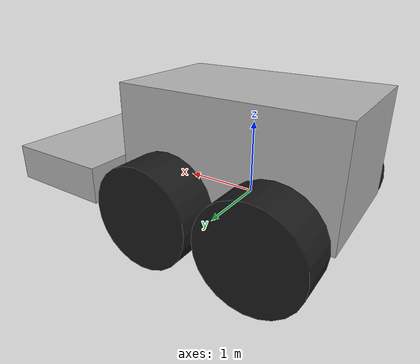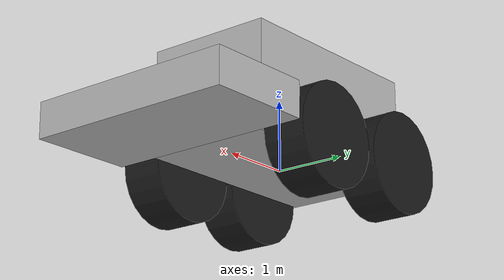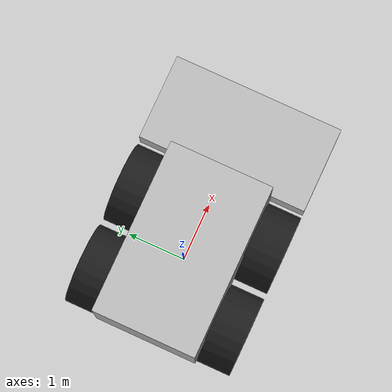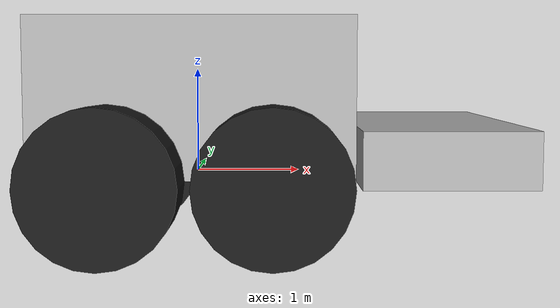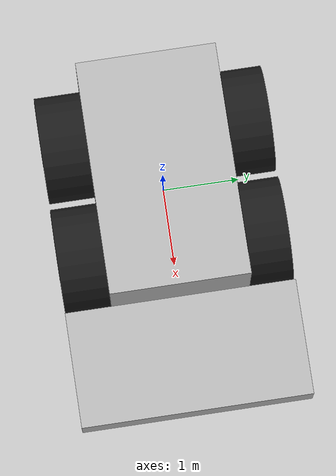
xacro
<?xml version="1.0"?>
<robot name="GroundsBot" xmlns:xacro="http://www.ros.org/wiki/xacro">

  <!-- Xacro properties -->
  <xacro:property name="width" value="3.0"/>
  <xacro:property name="height" value="1.5"/>
  <xacro:property name="length" value="4.5"/>
  <xacro:property name="wheel_radius" value="0.7"/>
  <xacro:property name="wheel_width" value="0.6"/>

  <!-- Colors -->
  <material name="grey">
    <color rgba="0.7 0.7 0.7 1.0"/>
  </material>
  <material name="black">
    <color rgba="0.1 0.1 0.1 1.0"/>
  </material>
  <material name="red">
    <color rgba="0.8 0.1 0.1 1.0"/>
  </material>

  <!-- Include other xacro files -->
  <xacro:include filename="$(find description_package)/urdf/grounds_bot_gazebo.xacro" />
  <xacro:include filename="$(find description_package)/urdf/inertia_properties.xacro" />

  <!-- Xacro macros -->
  <xacro:macro name="wheel" params="prefix">
    <link name="${prefix}_wheel_link">
      <visual>
        <origin xyz="0 0 0" rpy="${pi/2} 0 0"/>
        <geometry>
          <cylinder radius="${wheel_radius}" length="${wheel_width}"/>
        </geometry>
        <material name="black"/>
      </visual>
      <collision>
        <geometry>
          <cylinder radius="${wheel_radius}" length="${wheel_width}"/>
        </geometry>
        <origin xyz="0 0 0" rpy="${pi/2} 0 0"/>
      </collision>
      <xacro:cylinder_inertia m="0.25" r="${wheel_radius}" l="${wheel_width}"
                              o_xyz="0 0 0" o_rpy="${pi/2} 0 0"/>
    </link>
  </xacro:macro>

  <!-- Links -->
  <link name="base_link">
    <visual>
      <origin xyz="0 0 ${height / 2}" rpy="0 0 0"/>
      <geometry>
        <box size="${(length / 3) * 2} ${width - (wheel_width * 2)} ${height}"/>
      </geometry>
      <material name="grey"/>
    </visual>
    <collision>
      <geometry>
        <box size="${(length / 3) * 2} ${width - (wheel_width * 2)} ${height}"/>
      </geometry>
      <origin xyz="0 0 ${height / 2}" rpy="0 0 0"/>
    </collision>
    <xacro:box_inertia m="3.0" x="${(length / 3) * 2}" y="${width - (wheel_width * 2)}" z="${height}"
                       o_xyz="0 0 ${height / 2}" o_rpy="0 0 0"/>
  </link>
  <link name="cutting_unit_link">
    <visual>
      <origin xyz="${length / 6} 0 ${height / 6}" rpy="0 0 0"/>
      <geometry>
        <box size="${length / 3} ${width} ${height / 3}"/>
      </geometry>
      <material name="grey"/>
    </visual>
    <collision>
      <geometry>
          <box size="${length / 3} ${width} ${height / 3}"/>
      </geometry>
      <origin xyz="${length / 6} 0 ${height / 6}" rpy="0 0 0"/>
    </collision>
    <xacro:box_inertia m="1.0" x="${length / 3}" y="${width}" z="${height / 3}"
                       o_xyz="${length / 6} 0 ${height / 6}" o_rpy="0 0 0"/>
  </link>
  <xacro:wheel prefix="front_left"/>
  <xacro:wheel prefix="rear_left"/>
  <xacro:wheel prefix="front_right"/>
  <xacro:wheel prefix="rear_right"/>

  <!-- Joints -->
  <joint name="base_cutting_unit_joint" type="fixed">
    <parent link="base_link"/>
    <child link="cutting_unit_link"/>
    <origin xyz="${length / 3} 0 0" rpy="0 0 0"/>
  </joint>
  <joint name="base_front_left_wheel_joint" type="continuous">
    <parent link="base_link"/>
    <child link="front_left_wheel_link"/>
    <origin xyz="${length / 6} ${(width - wheel_width) / -2} 0" rpy="0 0 0"/>
    <axis xyz="0 1 0"/>
  </joint>
  <joint name="base_rear_left_wheel_joint" type="continuous">
    <parent link="base_link"/>
    <child link="rear_left_wheel_link"/>
    <origin xyz="${length / -6} ${(width - wheel_width) / -2} 0" rpy="0 0 0"/>
    <axis xyz="0 1 0"/>
  </joint>
  <joint name="base_front_right_wheel_joint" type="continuous">
    <parent link="base_link"/>
    <child link="front_right_wheel_link"/>
    <origin xyz="${length / 6} ${(width - wheel_width) / 2} 0" rpy="0 0 0"/>
    <axis xyz="0 1 0"/>
  </joint>
  <joint name="base_rear_right_wheel_joint" type="continuous">
    <parent link="base_link"/>
    <child link="rear_right_wheel_link"/>
    <origin xyz="${length / -6} ${(width - wheel_width) / 2} 0" rpy="0 0 0"/>
    <axis xyz="0 1 0"/>
  </joint>

</robot>

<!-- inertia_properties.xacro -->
<robot name="GroundsBot" xmlns:xacro="http://www.ros.org/wiki/xacro">
  <!-- Typical inertia for a box (parameters: mass, x-length, y-length, z-length, origin_xyz, origin_rpy) -->
  <xacro:macro name="box_inertia" params="m x y z o_xyz o_rpy">
    <inertial>
      <mass value="${m}"/>
      <origin xyz="${o_xyz}" rpy="${o_rpy}"/>
      <inertia ixx="${(m/12) * (z*z + y*y)}" ixy="0" ixz="0"
               iyy="${(m/12) * (x*x + z*z)}" iyz="0"
               izz="${(m/12) * (x*x + y*y)}"/>
    </inertial>
  </xacro:macro>

  <!-- Typical inertia for a cylinder (parameters: mass, radius, length, origin_xyz, origin_rpy)-->
  <xacro:macro name="cylinder_inertia" params="m r l o_xyz o_rpy">
        <inertial>
            <mass value="${m}" />
            <origin xyz="${o_xyz}" rpy="${o_rpy}" />
            <inertia ixx="${(m/12) * (3*r*r + l*l)}" ixy="0" ixz="0"
                    iyy="${(m/12) * (3*r*r + l*l)}" iyz="0"
                    izz="${(m/2) * (r*r)}" />
        </inertial>
    </xacro:macro>

    <!-- Typical inertia for a sphere (parameters: mass, radius, origin_xyz, origin_rpy)-->
    <xacro:macro name="sphere_inertia" params="m r o_xyz o_rpy">
        <inertial>
            <mass value="${m}" />
            <origin xyz="${o_xyz}" rpy="${o_rpy}" />
            <inertia ixx="${(2/5) * m * r * r}" ixy="0" ixz="0"
                    iyy="${(2/5) * m * r * r}" iyz="0"
                    izz="${(2/5) * m * r * r}" />
        </inertial>
    </xacro:macro>
</robot>
